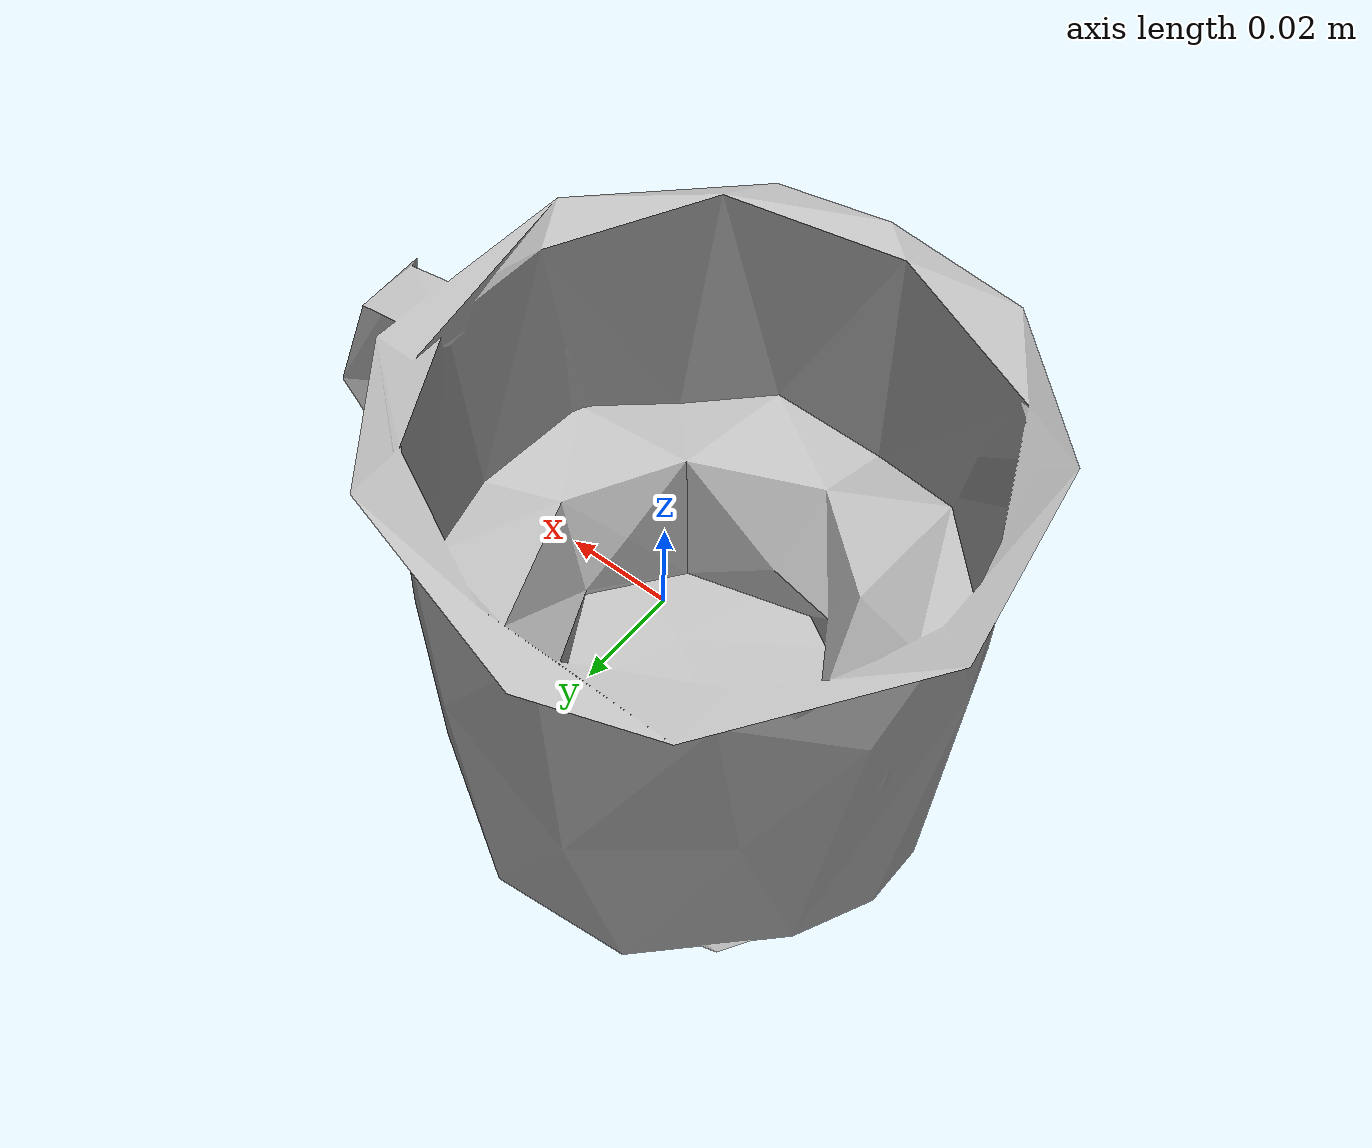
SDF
<?xml version='1.0'?>
<sdf version="1.4">
  <model name="025_mug">
    <static>false</static>
    <link name="link">
      <inertial>
        <pose>-0.01596881336673521 0.017118054292673747 0.04235541071429139 -1.5559203453137551 0.005696764972958989 1.5224365183069326</pose>
        <mass>0.05247829634094796</mass>
        <inertia>
          <ixx>6.081529604574961e-05</ixx>
          <ixy>1.0033040256492216e-20</ixy>
          <ixz>-1.0410410066634992e-21</ixz>
          <iyy>5.682028034235556e-05</iyy>
          <iyz>1.808468419725432e-22</iyz>
          <izz>5.029642790816814e-05</izz>
        </inertia>
      </inertial>
      <collision name="collision">
        <geometry>
          <mesh>
            <!-- Use a downsampled mesh for collisions -->
            <uri>model:///025_mug/025_mug_250_collision.stl</uri>
	        </mesh>
        </geometry>
        <surface>
      </surface>
      </collision>
      <visual name="visual">
        <geometry>
          <mesh>
            <uri>model:///025_mug/textured.obj</uri>
	        </mesh>
        </geometry>
        <material>
          <script>
            <uri>model:///025_mug/025_mug.material</uri>
            <name>025_mug</name>
          </script>
        </material>
      </visual>
    </link>
  </model>
</sdf>
